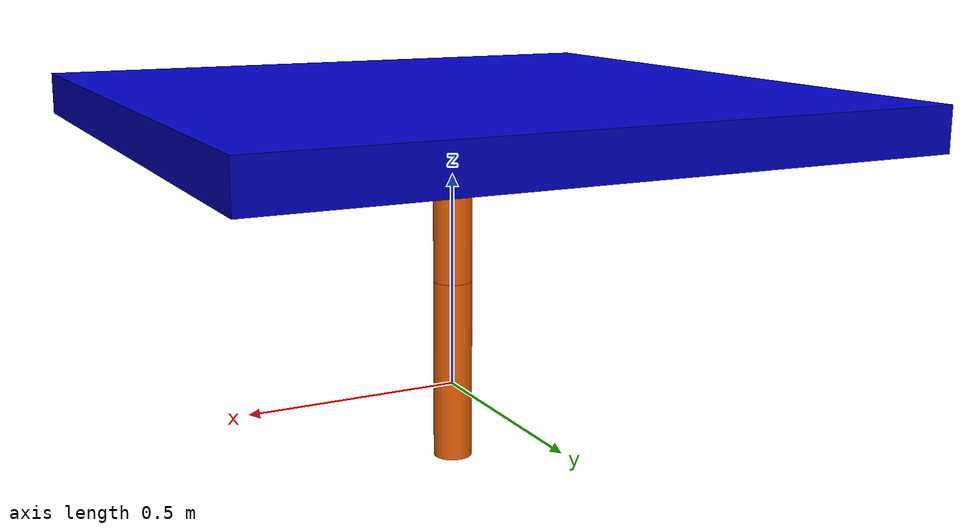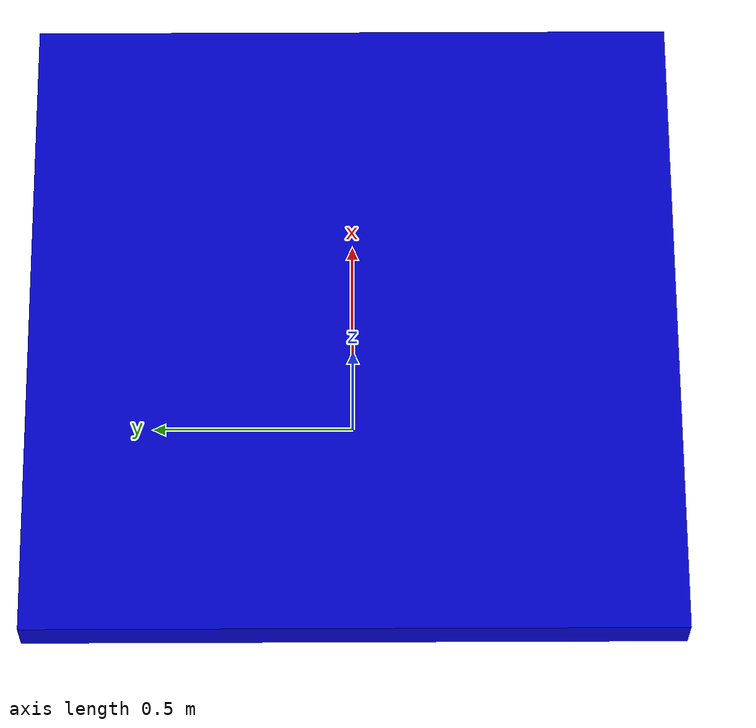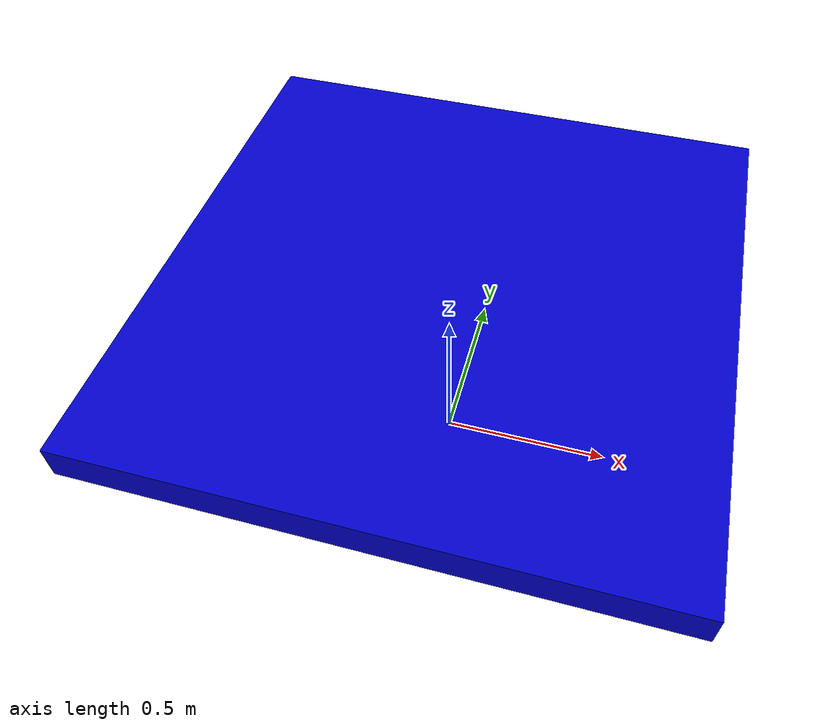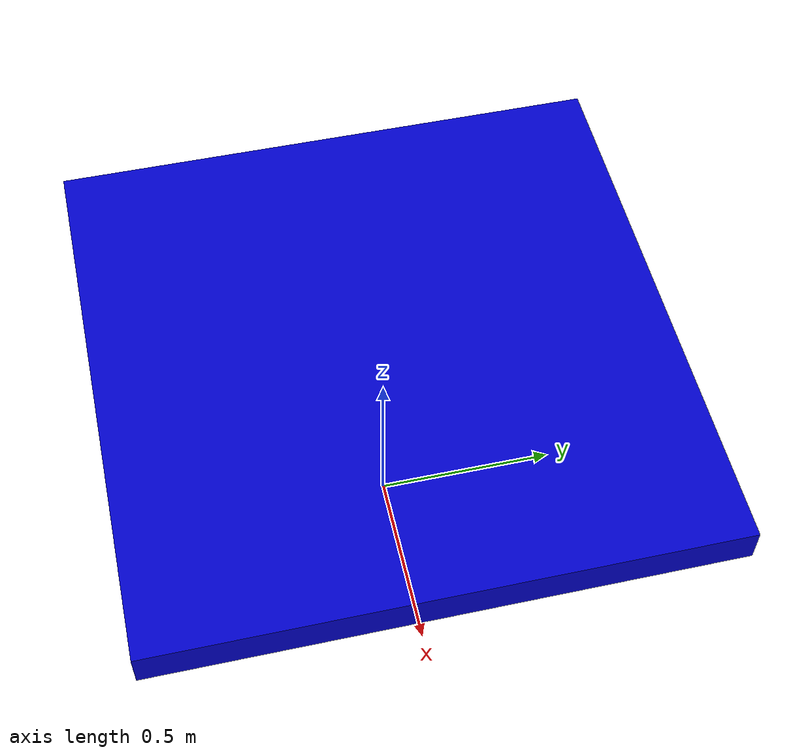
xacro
<?xml version="1.0"?>
<!-- Weed Control Unit Robot Arm -->
<robot xmlns:xacro="http://www.ros.org/wiki/xacro" name="weed_arm">

  <!-- Enable setting arguments from the launch file -->
  <xacro:arg name="prefix" default="" />
  <xacro:arg name="use_mock_hardware" default="false" />

  <!-- Import robot macro -->
   <xacro:include filename="robot_description.urdf.xacro" />

  <!-- Import materials and inertia macros -->
  <xacro:include filename="inertia.urdf.xacro" />
  <xacro:include filename="materials.urdf.xacro" />

  <!-- Import ros2_control description -->
  <xacro:include filename="ros2_control/2dof_arm.ros2_control.xacro" />

  <!-- Used for fixing robot -->
  <link name="world"/>

  <xacro:weed_robot parent="world" prefix="$(arg prefix)" />

  <xacro:arm_ros2_control
    name="2dof_arm" prefix="$(arg prefix)" use_mock_hardware="$(arg use_mock_hardware)"/>

</robot>

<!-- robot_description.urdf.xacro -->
<robot xmlns:xacro="http://www.ros.org/wiki/xacro">

  <xacro:macro name="weed_robot" params="parent prefix">

	<xacro:property name="height" value="0.6" />
	<joint name="${prefix}base_joint" type="fixed">
		<origin xyz="0 0 ${height}" rpy="0 0 0" />
		<parent link="${parent}" />
		<child link="${prefix}base_link" />
	</joint>

	<xacro:property name="base_l" value="1.5" />
	<xacro:property name="base_w" value="1.5" />
	<xacro:property name="base_h" value="0.1" />
	<xacro:property name="base_m" value="5" />
	<link name="${prefix}base_link">
		<visual>
			<origin xyz="0 0 ${base_h/2}" rpy="0 0 0" />
			<geometry>
				<box size="${base_l} ${base_w} ${base_h}" />
			</geometry>
			<material name="blue"/>
		</visual>
		<collision>
			<origin xyz="0 0 ${base_h/2}" rpy="0 0 0" />
			<geometry>
				<box size="${base_l} ${base_w} ${base_h}" />
			</geometry>
		</collision>
		<inertial>
			<origin xyz="0 0 ${base_h/2}" rpy="0 0 0" />
			<mass value="${base_m}" />
			<xacro:box_inertia m="${base_m}" x="${base_l}" y="${base_w}" z="${base_h}" />
		</inertial>
	</link>

	<joint name="${prefix}joint1" type="prismatic">
		<origin xyz="0 0 0" rpy="0 0 0" />
		<parent link="${prefix}base_link" />
		<child link="${prefix}link1" />
		<axis xyz="1 0 0" />
		<limit lower="${-base_l/2}" upper="${base_l/2}" velocity="100" effort="100" />
	</joint>

	<xacro:property name="first_w" value="0.1" />
	<xacro:property name="first_l" value="0.1" />
	<xacro:property name="first_h" value="0.1" />
	<xacro:property name="first_m" value="0.5" />
	<link name="${prefix}link1">
		<visual>
			<origin xyz="0 0 ${-first_h/2}" rpy="0 0 0" />
			<geometry>
				<box size="${first_w} ${first_l} ${first_h}" />
			</geometry>
			<material name="black"/>
		</visual>
		<collision>
			<origin xyz="0 0 ${-first_h}" rpy="0 0 0" />
			<geometry>
				<box size="${first_w} ${first_l} ${first_h}" />
			</geometry>
		</collision>
		<inertial>
			<origin xyz="0 0 ${-first_h/2}" rpy="0 0 0" />
			<mass value="${first_m}" />
			<xacro:box_inertia m="${first_m}" x="${first_w}" y="${first_l}" z="${first_h}" />
		</inertial>
	</link>

	<joint name="${prefix}joint2" type="revolute">
		<origin xyz="0 0 ${-first_h}" rpy="0 0 0" />
		<parent link="${prefix}link1" />
		<child link="${prefix}link2" />
		<axis xyz="1 0 0" />
		<limit lower="${-pi/2}" upper="${pi/2}" velocity="100" effort="100" />
	</joint>

	<xacro:property name="arm_length" value="0.25" />
	<xacro:property name="arm_radius" value="0.045" />
	<xacro:property name="arm_mass" value="1" />
	<link name="${prefix}link2">
		<visual>
			<origin xyz="0 0 ${-arm_length/2}" rpy="0 0 0" />
			<geometry>
				<cylinder length="${arm_length}" radius="${arm_radius}" />
			</geometry>
			<material name="orange"/>
		</visual>
		<collision>
			<origin xyz="0 0 ${-arm_length/2}" rpy="0 0 0" />
			<geometry>
				<cylinder length="${arm_length}" radius="${arm_radius}" />
			</geometry>
		</collision>
		<inertial>
			<origin xyz="0 0 ${-arm_length/2}" rpy="0 0 0" />
			<mass value="${arm_mass}" />
			<xacro:cylinder_inertia m="${arm_mass}" r="${arm_radius}" h="${arm_length}" />
		</inertial>
	</link>

	<xacro:property name="arm2_radius" value="0.045" />
	<xacro:property name="arm2_length" value="0.425" />
	<xacro:property name="arm2_mass" value="0.5" />
	<joint name="${prefix}joint3" type="continuous">
		<origin xyz="0 0 ${-arm_length}" rpy="0 0 0" />
		<parent link="${prefix}link2" />
		<child link="${prefix}link3" />
		<axis xyz="1 0 0" />
	</joint>

	<link name="${prefix}link3">
		<visual>
			<origin xyz="0 0 ${-arm2_length/2}" rpy="0 0 0" />
			<geometry>
				<cylinder length="${arm2_length}" radius="${arm2_radius}" />
			</geometry>
			<material name="orange"/>
		</visual>
		<collision>
			<origin xyz="0 0 ${-arm2_length/2}" rpy="0 0 0" />
			<geometry>
				<cylinder length="${arm2_length}" radius="${arm2_radius}" />
			</geometry>
		</collision>
		<inertial>
			<origin xyz="0 0 ${-arm2_length/2}" rpy="0 0 0" />
			<mass value="${arm2_mass}" />
			<xacro:cylinder_inertia m="${arm2_mass}" r="${arm2_radius}" h="${arm2_length}" />
		</inertial>
	</link>

  </xacro:macro>

</robot>

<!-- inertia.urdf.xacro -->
<robot xmlns:xacro="http://www.ros.org/wiki/xacro">
  <xacro:macro name="cylinder_inertia" params="m r h">
    <inertia
      ixx="${m*(3*r*r+h*h)/12}"
      ixy="0"
      ixz="0"
      iyy="${m*(3*r*r+h*h)/12}"
      iyz="0"
      izz="${m*r*r/2}"
    />
  </xacro:macro>
  <xacro:macro name="box_inertia" params="m x y z">
    <inertia
      ixx="${m*(y*y+z*z)/12}"
      ixy="0"
      ixz="0"
      iyy="${m*(x*x+z*z)/12}"
      iyz="0"
      izz="${m*(x*x+y*y)/12}"
    />
  </xacro:macro>
  <xacro:macro name="sphere_inertia" params="m r">
    <inertia
      ixx="${2*m*r*r/5}"
      ixy="0"
      ixz="0"
      iyy="${2*m*r*r/5}"
      iyz="0"
      izz="${2*m*r*r/5}"
    />
  </xacro:macro>
</robot>

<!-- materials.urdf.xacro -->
<robot>
  <material name="black">
    <color rgba="0 0 0 ${255/255}" />
  </material>
  <material name="dark_grey">
    <color rgba="0 0 ${155/255} ${255/255}" />
  </material>
  <material name="blue">
    <color rgba="0 0 ${200/255} ${255/255}" />
  </material>
  <material name="green">
    <color rgba="0 ${200/255} 0 ${255/255}" />
  </material>
  <material name="grey">
    <color rgba="${50/255} ${50/255} ${50/255} ${255/255}" />
  </material>
  <material name="orange">
    <color rgba="${255/255} ${108/255} ${10/255} ${255/255}" />
  </material>
  <material name="brown">
    <color rgba="${222/255} ${207/255} ${195/255} ${255/255}" />
  </material>
  <material name="red">
    <color rgba="${200/255} 0 0 ${255/255}" />
  </material>
  <material name="white">
    <color rgba="${255/255} ${255/255} ${255/255} ${255/255}" />
  </material>
</robot>
